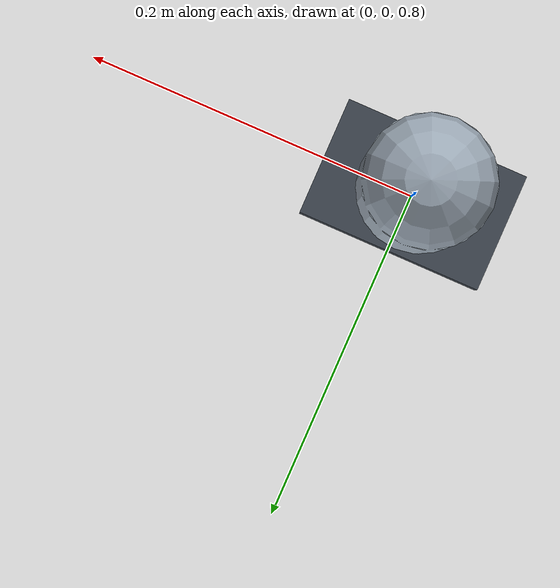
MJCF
<mujoco model="two_dof_ironing_rl_sandbox">
  <compiler angle="radian" autolimits="true"/>
  <option timestep="0.005" gravity="0 0 -9.81" integrator="implicitfast"/>
  <default>
    <joint limited="true" damping="0.25" armature="0.02"/>
    <geom type="capsule" contype="0" conaffinity="0" rgba="0.62 0.67 0.72 1"/>
    <motor ctrllimited="true"/>
  </default>
  <worldbody>
    <light pos="0 -1 2" dir="0 1 -1"/>
    <body name="upper_arm" pos="0 0 1.4">
      <joint name="r_shoulder_elev" type="hinge" axis="0 1 0" range="-1.2 1.5"/>
      <geom name="upper_arm_geom" fromto="0 0 0 0 0 -0.30" size="0.035" mass="2.1"/>
      <body name="forearm" pos="0 0 -0.30">
        <joint name="r_elbow_flex" type="hinge" axis="0 1 0" range="0.05 2.25"/>
        <geom name="forearm_geom" fromto="0 0 0 0 0 -0.25" size="0.03" mass="1.4"/>
        <body name="iron" pos="0 0 -0.25">
          <geom name="iron_proxy" type="box" size="0.055 0.035 0.035" mass="1.2" rgba="0.25 0.28 0.32 1"/>
        </body>
      </body>
    </body>
  </worldbody>
  <actuator>
    <motor name="human_shoulder_motor" joint="r_shoulder_elev" gear="1" ctrlrange="-30 30"/>
    <motor name="human_elbow_motor" joint="r_elbow_flex" gear="1" ctrlrange="-15 15"/>
    <motor name="exo_shoulder_motor" joint="r_shoulder_elev" gear="1" ctrlrange="-5 5"/>
    <motor name="exo_elbow_motor" joint="r_elbow_flex" gear="1" ctrlrange="-3 3"/>
  </actuator>
</mujoco>
